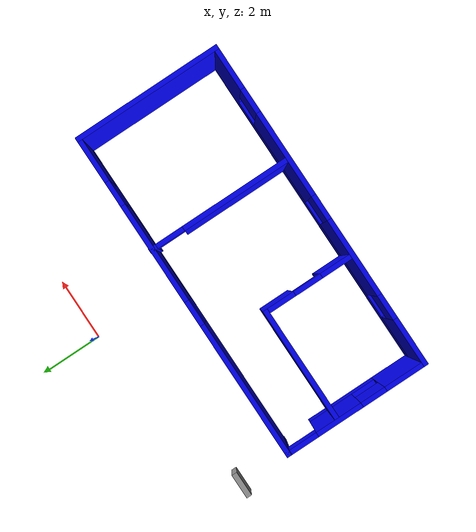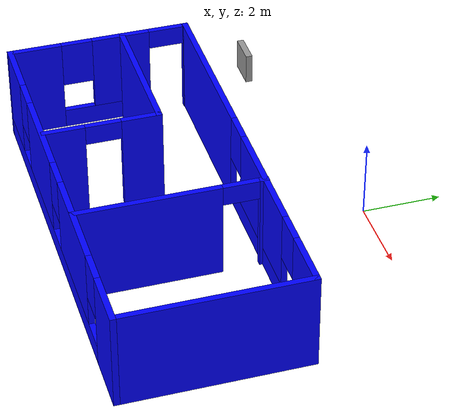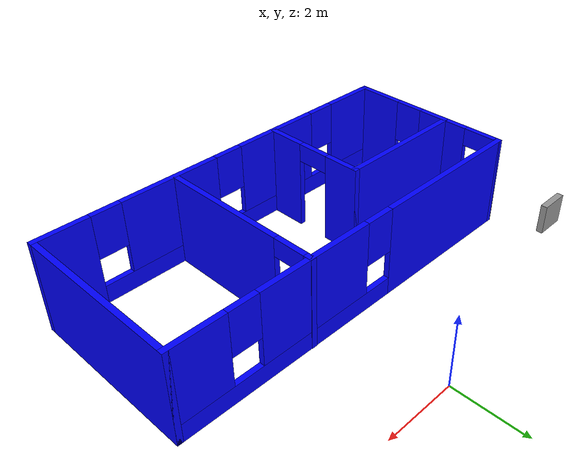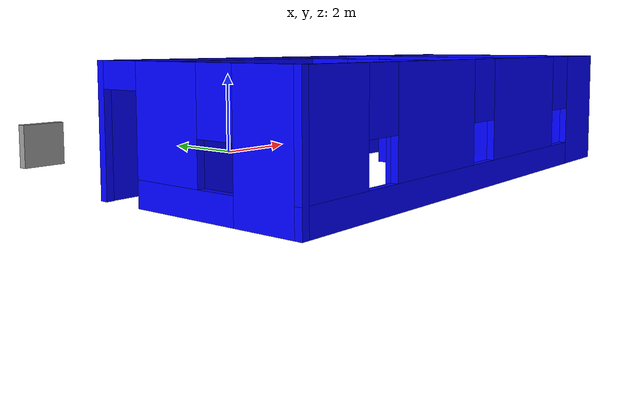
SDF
<?xml version='1.0'?>
<sdf version='1.6'>
  <model name='building'>
    <pose frame=''>-0.422037 -5.23803 0 0 -0 0</pose>
    <link name='Wall_10'>
      <collision name='Wall_10_Collision'>
        <geometry>
          <box>
            <size>4.75 0.15 2.5</size>
          </box>
        </geometry>
        <pose frame=''>0 0 1.25 0 -0 0</pose>
      </collision>
      <visual name='Wall_10_Visual'>
        <pose frame=''>0 0 1.25 0 -0 0</pose>
        <geometry>
          <box>
            <size>4.75 0.15 2.5</size>
          </box>
        </geometry>
        <material>
          <script>
            <uri>file://media/materials/scripts/gazebo.material</uri>
            <name>Gazebo/Grey</name>
          </script>
          <ambient>0 0 1 1</ambient>
        </material>
        <meta>
          <layer>0</layer>
        </meta>
      </visual>
      <pose frame=''>5.3 -0.005 0 0 0 -1.5708</pose>
    </link>
    <link name='Wall_11'>
      <pose frame=''>0 -2.305 0 0 -0 3.14159</pose>
      <visual name='Wall_11_Visual_0'>
        <pose frame=''>-4.6525 0 1.25 0 -0 0</pose>
        <geometry>
          <box>
            <size>1.445 0.15 2.5</size>
          </box>
        </geometry>
        <material>
          <script>
            <uri>file://media/materials/scripts/gazebo.material</uri>
            <name>Gazebo/Grey</name>
          </script>
          <ambient>0 0 1 1</ambient>
        </material>
        <meta>
          <layer>0</layer>
        </meta>
      </visual>
      <collision name='Wall_11_Collision_0'>
        <geometry>
          <box>
            <size>1.445 0.15 2.5</size>
          </box>
        </geometry>
        <pose frame=''>-4.6525 0 1.25 0 -0 0</pose>
      </collision>
      <visual name='Wall_11_Visual_1'>
        <pose frame=''>0.7225 0 0.25 0 -0 0</pose>
        <geometry>
          <box>
            <size>9.305 0.15 0.5</size>
          </box>
        </geometry>
        <material>
          <script>
            <uri>file://media/materials/scripts/gazebo.material</uri>
            <name>Gazebo/Grey</name>
          </script>
          <ambient>0 0 1 1</ambient>
        </material>
        <meta>
          <layer>0</layer>
        </meta>
      </visual>
      <collision name='Wall_11_Collision_1'>
        <geometry>
          <box>
            <size>9.305 0.15 0.5</size>
          </box>
        </geometry>
        <pose frame=''>0.7225 0 0.25 0 -0 0</pose>
      </collision>
      <visual name='Wall_11_Visual_2'>
        <pose frame=''>-1.735 0 1.5 0 -0 0</pose>
        <geometry>
          <box>
            <size>2.79 0.15 2</size>
          </box>
        </geometry>
        <material>
          <script>
            <uri>file://media/materials/scripts/gazebo.material</uri>
            <name>Gazebo/Grey</name>
          </script>
          <ambient>0 0 1 1</ambient>
        </material>
        <meta>
          <layer>0</layer>
        </meta>
      </visual>
      <collision name='Wall_11_Collision_2'>
        <geometry>
          <box>
            <size>2.79 0.15 2</size>
          </box>
        </geometry>
        <pose frame=''>-1.735 0 1.5 0 -0 0</pose>
      </collision>
      <visual name='Wall_11_Visual_3'>
        <pose frame=''>1.73 0 1.5 0 -0 0</pose>
        <geometry>
          <box>
            <size>2.54 0.15 2</size>
          </box>
        </geometry>
        <material>
          <script>
            <uri>file://media/materials/scripts/gazebo.material</uri>
            <name>Gazebo/Grey</name>
          </script>
          <ambient>0 0 1 1</ambient>
        </material>
        <meta>
          <layer>0</layer>
        </meta>
      </visual>
      <collision name='Wall_11_Collision_3'>
        <geometry>
          <box>
            <size>2.54 0.15 2</size>
          </box>
        </geometry>
        <pose frame=''>1.73 0 1.5 0 -0 0</pose>
      </collision>
      <visual name='Wall_11_Visual_4'>
        <pose frame=''>4.5875 0 1.5 0 -0 0</pose>
        <geometry>
          <box>
            <size>1.575 0.15 2</size>
          </box>
        </geometry>
        <material>
          <script>
            <uri>file://media/materials/scripts/gazebo.material</uri>
            <name>Gazebo/Grey</name>
          </script>
          <ambient>0 0 1 1</ambient>
        </material>
        <meta>
          <layer>0</layer>
        </meta>
      </visual>
      <collision name='Wall_11_Collision_4'>
        <geometry>
          <box>
            <size>1.575 0.15 2</size>
          </box>
        </geometry>
        <pose frame=''>4.5875 0 1.5 0 -0 0</pose>
      </collision>
      <visual name='Wall_11_Visual_5'>
        <pose frame=''>-3.53 0 1.9 0 -0 0</pose>
        <geometry>
          <box>
            <size>0.8 0.15 1.2</size>
          </box>
        </geometry>
        <material>
          <script>
            <uri>file://media/materials/scripts/gazebo.material</uri>
            <name>Gazebo/Grey</name>
          </script>
          <ambient>0 0 1 1</ambient>
        </material>
        <meta>
          <layer>0</layer>
        </meta>
      </visual>
      <collision name='Wall_11_Collision_5'>
        <geometry>
          <box>
            <size>0.8 0.15 1.2</size>
          </box>
        </geometry>
        <pose frame=''>-3.53 0 1.9 0 -0 0</pose>
      </collision>
      <visual name='Wall_11_Visual_6'>
        <pose frame=''>0.06 0 1.9 0 -0 0</pose>
        <geometry>
          <box>
            <size>0.8 0.15 1.2</size>
          </box>
        </geometry>
        <material>
          <script>
            <uri>file://media/materials/scripts/gazebo.material</uri>
            <name>Gazebo/Grey</name>
          </script>
          <ambient>0 0 1 1</ambient>
        </material>
        <meta>
          <layer>0</layer>
        </meta>
      </visual>
      <collision name='Wall_11_Collision_6'>
        <geometry>
          <box>
            <size>0.8 0.15 1.2</size>
          </box>
        </geometry>
        <pose frame=''>0.06 0 1.9 0 -0 0</pose>
      </collision>
      <visual name='Wall_11_Visual_7'>
        <pose frame=''>3.4 0 1.9 0 -0 0</pose>
        <geometry>
          <box>
            <size>0.8 0.15 1.2</size>
          </box>
        </geometry>
        <material>
          <script>
            <uri>file://media/materials/scripts/gazebo.material</uri>
            <name>Gazebo/Grey</name>
          </script>
          <ambient>0 0 1 1</ambient>
        </material>
        <meta>
          <layer>0</layer>
        </meta>
      </visual>
      <collision name='Wall_11_Collision_7'>
        <geometry>
          <box>
            <size>0.8 0.15 1.2</size>
          </box>
        </geometry>
        <pose frame=''>3.4 0 1.9 0 -0 0</pose>
      </collision>
    </link>
    <link name='Wall_12'>
      <pose frame=''>-5.3 -0.005 0 0 -0 1.5708</pose>
      <visual name='Wall_12_Visual_0'>
        <pose frame=''>-1.6825 0 1.25 0 -0 0</pose>
        <geometry>
          <box>
            <size>1.385 0.15 2.5</size>
          </box>
        </geometry>
        <material>
          <script>
            <uri>file://media/materials/scripts/gazebo.material</uri>
            <name>Gazebo/Grey</name>
          </script>
          <ambient>0 0 1 1</ambient>
        </material>
        <meta>
          <layer>0</layer>
        </meta>
      </visual>
      <collision name='Wall_12_Collision_0'>
        <geometry>
          <box>
            <size>1.385 0.15 2.5</size>
          </box>
        </geometry>
        <pose frame=''>-1.6825 0 1.25 0 -0 0</pose>
      </collision>
      <visual name='Wall_12_Visual_1'>
        <pose frame=''>2.2925 0 1.25 0 -0 0</pose>
        <geometry>
          <box>
            <size>0.165 0.15 2.5</size>
          </box>
        </geometry>
        <material>
          <script>
            <uri>file://media/materials/scripts/gazebo.material</uri>
            <name>Gazebo/Grey</name>
          </script>
          <ambient>0 0 1 1</ambient>
        </material>
        <meta>
          <layer>0</layer>
        </meta>
      </visual>
      <collision name='Wall_12_Collision_1'>
        <geometry>
          <box>
            <size>0.165 0.15 2.5</size>
          </box>
        </geometry>
        <pose frame=''>2.2925 0 1.25 0 -0 0</pose>
      </collision>
      <visual name='Wall_12_Visual_2'>
        <pose frame=''>0.16 0 0.25 0 -0 0</pose>
        <geometry>
          <box>
            <size>2.3 0.15 0.5</size>
          </box>
        </geometry>
        <material>
          <script>
            <uri>file://media/materials/scripts/gazebo.material</uri>
            <name>Gazebo/Grey</name>
          </script>
          <ambient>0 0 1 1</ambient>
        </material>
        <meta>
          <layer>0</layer>
        </meta>
      </visual>
      <collision name='Wall_12_Collision_2'>
        <geometry>
          <box>
            <size>2.3 0.15 0.5</size>
          </box>
        </geometry>
        <pose frame=''>0.16 0 0.25 0 -0 0</pose>
      </collision>
      <visual name='Wall_12_Visual_3'>
        <pose frame=''>0.56 0 1.5 0 -0 0</pose>
        <geometry>
          <box>
            <size>1.5 0.15 2</size>
          </box>
        </geometry>
        <material>
          <script>
            <uri>file://media/materials/scripts/gazebo.material</uri>
            <name>Gazebo/Grey</name>
          </script>
          <ambient>0 0 1 1</ambient>
        </material>
        <meta>
          <layer>0</layer>
        </meta>
      </visual>
      <collision name='Wall_12_Collision_3'>
        <geometry>
          <box>
            <size>1.5 0.15 2</size>
          </box>
        </geometry>
        <pose frame=''>0.56 0 1.5 0 -0 0</pose>
      </collision>
      <visual name='Wall_12_Visual_4'>
        <pose frame=''>-0.59 0 1.9 0 -0 0</pose>
        <geometry>
          <box>
            <size>0.8 0.15 1.2</size>
          </box>
        </geometry>
        <material>
          <script>
            <uri>file://media/materials/scripts/gazebo.material</uri>
            <name>Gazebo/Grey</name>
          </script>
          <ambient>0 0 1 1</ambient>
        </material>
        <meta>
          <layer>0</layer>
        </meta>
      </visual>
      <collision name='Wall_12_Collision_4'>
        <geometry>
          <box>
            <size>0.8 0.15 1.2</size>
          </box>
        </geometry>
        <pose frame=''>-0.59 0 1.9 0 -0 0</pose>
      </collision>
      <visual name='Wall_12_Visual_5'>
        <pose frame=''>1.76 0 2.25 0 -0 0</pose>
        <geometry>
          <box>
            <size>0.9 0.15 0.5</size>
          </box>
        </geometry>
        <material>
          <script>
            <uri>file://media/materials/scripts/gazebo.material</uri>
            <name>Gazebo/Grey</name>
          </script>
          <ambient>0 0 1 1</ambient>
        </material>
        <meta>
          <layer>0</layer>
        </meta>
      </visual>
      <collision name='Wall_12_Collision_5'>
        <geometry>
          <box>
            <size>0.9 0.15 0.5</size>
          </box>
        </geometry>
        <pose frame=''>1.76 0 2.25 0 -0 0</pose>
      </collision>
    </link>
    <link name='Wall_16'>
      <collision name='Wall_16_Collision'>
        <geometry>
          <box>
            <size>3.75 0.15 2.5</size>
          </box>
        </geometry>
        <pose frame=''>0 0 1.25 0 -0 0</pose>
      </collision>
      <visual name='Wall_16_Visual'>
        <pose frame=''>0 0 1.25 0 -0 0</pose>
        <geometry>
          <box>
            <size>3.75 0.15 2.5</size>
          </box>
        </geometry>
        <material>
          <script>
            <uri>file://media/materials/scripts/gazebo.material</uri>
            <name>Gazebo/Grey</name>
          </script>
          <ambient>0 0 1 1</ambient>
        </material>
        <meta>
          <layer>0</layer>
        </meta>
      </visual>
      <pose frame=''>-3.46 0.605 0 0 -0 0</pose>
    </link>
    <link name='Wall_17'>
      <pose frame=''>-1.66 -0.82 0 0 0 -1.5708</pose>
      <visual name='Wall_17_Visual_0'>
        <pose frame=''>-0.9875 0 1.25 0 -0 0</pose>
        <geometry>
          <box>
            <size>1.025 0.15 2.5</size>
          </box>
        </geometry>
        <material>
          <script>
            <uri>file://media/materials/scripts/gazebo.material</uri>
            <name>Gazebo/Grey</name>
          </script>
          <ambient>0 0 1 1</ambient>
        </material>
        <meta>
          <layer>0</layer>
        </meta>
      </visual>
      <collision name='Wall_17_Collision_0'>
        <geometry>
          <box>
            <size>1.025 0.15 2.5</size>
          </box>
        </geometry>
        <pose frame=''>-0.9875 0 1.25 0 -0 0</pose>
      </collision>
      <visual name='Wall_17_Visual_1'>
        <pose frame=''>0.9625 0 1.25 0 -0 0</pose>
        <geometry>
          <box>
            <size>1.075 0.15 2.5</size>
          </box>
        </geometry>
        <material>
          <script>
            <uri>file://media/materials/scripts/gazebo.material</uri>
            <name>Gazebo/Grey</name>
          </script>
          <ambient>0 0 1 1</ambient>
        </material>
        <meta>
          <layer>0</layer>
        </meta>
      </visual>
      <collision name='Wall_17_Collision_1'>
        <geometry>
          <box>
            <size>1.075 0.15 2.5</size>
          </box>
        </geometry>
        <pose frame=''>0.9625 0 1.25 0 -0 0</pose>
      </collision>
      <visual name='Wall_17_Visual_2'>
        <pose frame=''>-0.025 0 2.25 0 -0 0</pose>
        <geometry>
          <box>
            <size>0.9 0.15 0.5</size>
          </box>
        </geometry>
        <material>
          <script>
            <uri>file://media/materials/scripts/gazebo.material</uri>
            <name>Gazebo/Grey</name>
          </script>
          <ambient>0 0 1 1</ambient>
        </material>
        <meta>
          <layer>0</layer>
        </meta>
      </visual>
      <collision name='Wall_17_Collision_2'>
        <geometry>
          <box>
            <size>0.9 0.15 0.5</size>
          </box>
        </geometry>
        <pose frame=''>-0.025 0 2.25 0 -0 0</pose>
      </collision>
    </link>
    <link name='Wall_19'>
      <pose frame=''>1.58 0.005 0 0 0 -1.5708</pose>
      <visual name='Wall_19_Visual_0'>
        <pose frame=''>-2.2575 0 1.25 0 -0 0</pose>
        <geometry>
          <box>
            <size>0.235 0.15 2.5</size>
          </box>
        </geometry>
        <material>
          <script>
            <uri>file://media/materials/scripts/gazebo.material</uri>
            <name>Gazebo/Grey</name>
          </script>
          <ambient>0 0 1 1</ambient>
        </material>
        <meta>
          <layer>0</layer>
        </meta>
      </visual>
      <collision name='Wall_19_Collision_0'>
        <geometry>
          <box>
            <size>0.235 0.15 2.5</size>
          </box>
        </geometry>
        <pose frame=''>-2.2575 0 1.25 0 -0 0</pose>
      </collision>
      <visual name='Wall_19_Visual_1'>
        <pose frame=''>0.5675 0 1.25 0 -0 0</pose>
        <geometry>
          <box>
            <size>3.615 0.15 2.5</size>
          </box>
        </geometry>
        <material>
          <script>
            <uri>file://media/materials/scripts/gazebo.material</uri>
            <name>Gazebo/Grey</name>
          </script>
          <ambient>0 0 1 1</ambient>
        </material>
        <meta>
          <layer>0</layer>
        </meta>
      </visual>
      <collision name='Wall_19_Collision_1'>
        <geometry>
          <box>
            <size>3.615 0.15 2.5</size>
          </box>
        </geometry>
        <pose frame=''>0.5675 0 1.25 0 -0 0</pose>
      </collision>
      <visual name='Wall_19_Visual_2'>
        <pose frame=''>-1.69 0 2.25 0 -0 0</pose>
        <geometry>
          <box>
            <size>0.9 0.15 0.5</size>
          </box>
        </geometry>
        <material>
          <script>
            <uri>file://media/materials/scripts/gazebo.material</uri>
            <name>Gazebo/Grey</name>
          </script>
          <ambient>0 0 1 1</ambient>
        </material>
        <meta>
          <layer>0</layer>
        </meta>
      </visual>
      <collision name='Wall_19_Collision_2'>
        <geometry>
          <box>
            <size>0.9 0.15 0.5</size>
          </box>
        </geometry>
        <pose frame=''>-1.69 0 2.25 0 -0 0</pose>
      </collision>
    </link>
    <link name='Wall_9'>
      <pose frame=''>0 2.295 0 0 -0 0</pose>
      <visual name='Wall_9_Visual_0'>
        <pose frame=''>-3.1675 0 1.25 0 -0 0</pose>
        <geometry>
          <box>
            <size>4.415 0.15 2.5</size>
          </box>
        </geometry>
        <material>
          <script>
            <uri>file://media/materials/scripts/gazebo.material</uri>
            <name>Gazebo/Grey</name>
          </script>
          <ambient>0 0 1 1</ambient>
        </material>
        <meta>
          <layer>0</layer>
        </meta>
      </visual>
      <collision name='Wall_9_Collision_0'>
        <geometry>
          <box>
            <size>4.415 0.15 2.5</size>
          </box>
        </geometry>
        <pose frame=''>-3.1675 0 1.25 0 -0 0</pose>
      </collision>
      <visual name='Wall_9_Visual_1'>
        <pose frame=''>2.2075 0 0.25 0 -0 0</pose>
        <geometry>
          <box>
            <size>6.335 0.15 0.5</size>
          </box>
        </geometry>
        <material>
          <script>
            <uri>file://media/materials/scripts/gazebo.material</uri>
            <name>Gazebo/Grey</name>
          </script>
          <ambient>0 0 1 1</ambient>
        </material>
        <meta>
          <layer>0</layer>
        </meta>
      </visual>
      <collision name='Wall_9_Collision_1'>
        <geometry>
          <box>
            <size>6.335 0.15 0.5</size>
          </box>
        </geometry>
        <pose frame=''>2.2075 0 0.25 0 -0 0</pose>
      </collision>
      <visual name='Wall_9_Visual_2'>
        <pose frame=''>1.45 0 1.5 0 -0 0</pose>
        <geometry>
          <box>
            <size>3.22 0.15 2</size>
          </box>
        </geometry>
        <material>
          <script>
            <uri>file://media/materials/scripts/gazebo.material</uri>
            <name>Gazebo/Grey</name>
          </script>
          <ambient>0 0 1 1</ambient>
        </material>
        <meta>
          <layer>0</layer>
        </meta>
      </visual>
      <collision name='Wall_9_Collision_2'>
        <geometry>
          <box>
            <size>3.22 0.15 2</size>
          </box>
        </geometry>
        <pose frame=''>1.45 0 1.5 0 -0 0</pose>
      </collision>
      <visual name='Wall_9_Visual_3'>
        <pose frame=''>4.6175 0 1.5 0 -0 0</pose>
        <geometry>
          <box>
            <size>1.515 0.15 2</size>
          </box>
        </geometry>
        <material>
          <script>
            <uri>file://media/materials/scripts/gazebo.material</uri>
            <name>Gazebo/Grey</name>
          </script>
          <ambient>0 0 1 1</ambient>
        </material>
        <meta>
          <layer>0</layer>
        </meta>
      </visual>
      <collision name='Wall_9_Collision_3'>
        <geometry>
          <box>
            <size>1.515 0.15 2</size>
          </box>
        </geometry>
        <pose frame=''>4.6175 0 1.5 0 -0 0</pose>
      </collision>
      <visual name='Wall_9_Visual_4'>
        <pose frame=''>-0.56 0 1.9 0 -0 0</pose>
        <geometry>
          <box>
            <size>0.8 0.15 1.2</size>
          </box>
        </geometry>
        <material>
          <script>
            <uri>file://media/materials/scripts/gazebo.material</uri>
            <name>Gazebo/Grey</name>
          </script>
          <ambient>0 0 1 1</ambient>
        </material>
        <meta>
          <layer>0</layer>
        </meta>
      </visual>
      <collision name='Wall_9_Collision_4'>
        <geometry>
          <box>
            <size>0.8 0.15 1.2</size>
          </box>
        </geometry>
        <pose frame=''>-0.56 0 1.9 0 -0 0</pose>
      </collision>
      <visual name='Wall_9_Visual_5'>
        <pose frame=''>3.46 0 1.9 0 -0 0</pose>
        <geometry>
          <box>
            <size>0.8 0.15 1.2</size>
          </box>
        </geometry>
        <material>
          <script>
            <uri>file://media/materials/scripts/gazebo.material</uri>
            <name>Gazebo/Grey</name>
          </script>
          <ambient>0 0 1 1</ambient>
        </material>
        <meta>
          <layer>0</layer>
        </meta>
      </visual>
      <collision name='Wall_9_Collision_5'>
        <geometry>
          <box>
            <size>0.8 0.15 1.2</size>
          </box>
        </geometry>
        <pose frame=''>3.46 0 1.9 0 -0 0</pose>
      </collision>
    </link>
    <link name='Window_6'>
      <collision name='Window_6_Collision'>
        <geometry>
          <box>
            <size>0.8 0.17 0.8</size>
          </box>
        </geometry>
        <pose frame=''>0 0 0.4 0 -0 0</pose>
      </collision>
      <visual name='Window_6_Visual'>
        <pose frame=''>0 0 0.4 0 -0 0</pose>
        <geometry>
          <box>
            <size>0.8 0.17 0.8</size>
          </box>
        </geometry>
        <material>
          <script>
            <uri>file://media/materials/scripts/gazebo.material</uri>
            <name>Gazebo/Grey</name>
          </script>
        </material>
      </visual>
      <pose frame=''>-5.53041 3.979 0.5 0 -0 0</pose>
    </link>
    <static>1</static>
  </model>
</sdf>
